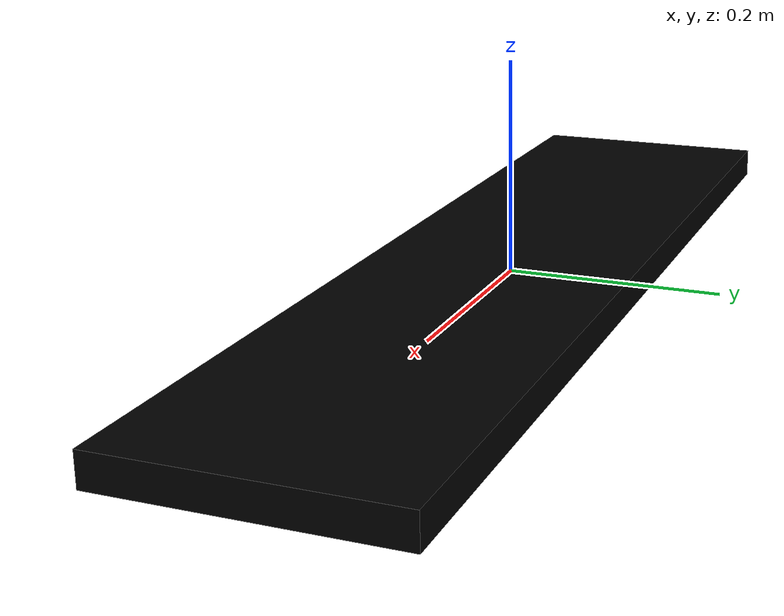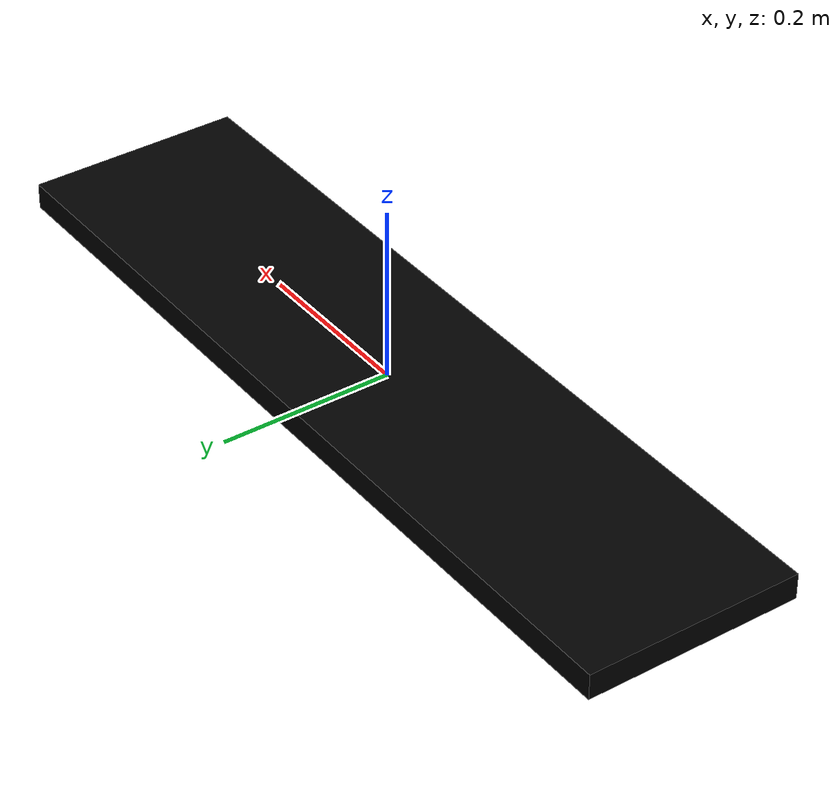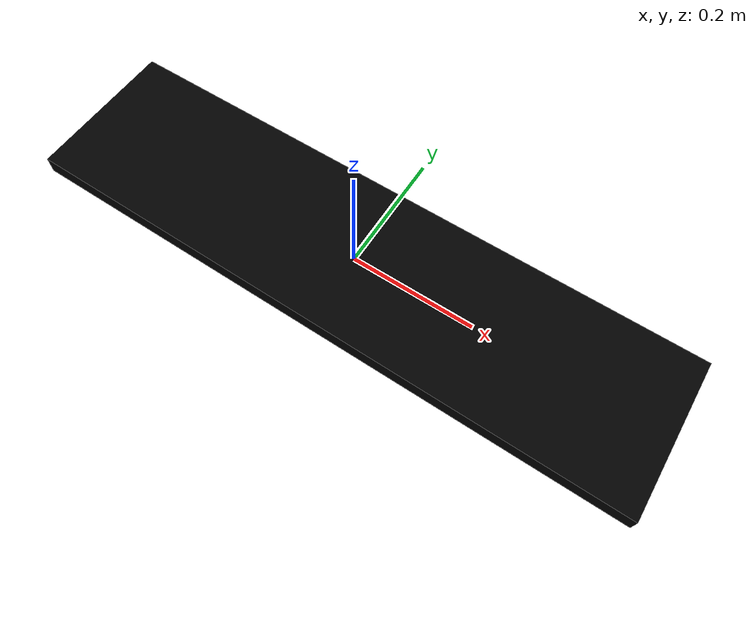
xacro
<?xml version="1.0"?>

<robot xmlns:xacro="http://ros.org/wiki/xacro">
    <material name="Body_Gray">
        <color rgba="0.0 0.0 0.0 1.0" />
    </material>
    <xacro:macro name="make_body">
        <xacro:property name="w" value="0.25" />
        <xacro:property name="h" value="0.03" />
        <xacro:property name="l" value="1" />
        <xacro:property name="m" value="0.5" />
        <xacro:include filename="lib.xacro" />

        <link name="body_link">
            <visual>
                <geometry>
                    <box size="${l} ${w} ${h}" />
                </geometry>
                <material name="Body_Gray" />
            </visual>
            <collision>
                <geometry>
                    <box size=" ${l} ${w} ${h}" />
                </geometry>
            </collision>
            <xacro:box_inertia m="${m}" x="${l}" y="${w}" z="${h}" />
        </link>
        <gazebo reference="body_link">
            <material value="Gazebo/Wood" />
            <sensor name="imu_sensor" type="imu">
                <always_on>1</always_on>
                <gravity>true</gravity>
                <update_rate>1000.0</update_rate>
            </sensor>
        </gazebo>

    </xacro:macro>
    <xacro:make_body />

</robot>

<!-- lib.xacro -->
<robot xmlns:xacro="http://ros.org/wiki/xacro">

  <xacro:property name="M_PI" value="3.14159" />

  <xacro:macro name="cylinder_inertia" params="m r h">
    <inertial>
      <mass value="${m}" />
      <inertia ixx="${m*(3*r*r+h*h)/12}" ixy="0" ixz="0" iyy="${m*(3*r*r+h*h)/12}" iyz="0" izz="${m*r*r/2}" />
    </inertial>
  </xacro:macro>

  <xacro:macro name="box_inertia" params="m x y z">
    <inertial>
      <mass value="${m}" />
      <inertia ixx="${m*(y*y+z*z)/12}" ixy="0" ixz="0" iyy="${m*(x*x+z*z)/12}" iyz="0" izz="${m*(x*x+z*z)/12}" />
    </inertial>
  </xacro:macro>

  <xacro:macro name="sphere_inertia" params="m r">
    <inertial>
      <mass value="${m}" />
      <mass value="${m}" />
      <inertial ixx="${2*m*r*r/5}" ixy="0" ixz="0" iyy="${2*m*r*r/5}" iyz="0" izz="${2*m*r*r/5}" />
    </inertial>
  </xacro:macro>
  <xacro:macro name="zero_inertia">
    <xacro:sphere_inertia m="0.01" r="0.01" />
  </xacro:macro>

  <xacro:macro name="transmission" params="joint">
    <ros2_control name="GazeboSystem" type="system">
      <hardware>
        <plugin>gazebo_ros2_control/GazeboSystem</plugin>
      </hardware>
      <joint name="${joint}">
        <command_interface name="effort">
          <param name="min">-1000</param>
          <param name="max">1000</param>
        </command_interface>
        <state_interface name="position">
          <param name="initial_value">0.0</param>
        </state_interface>
        <state_interface name="velocity"/>
        <state_interface name="effort"/>
      </joint>
    </ros2_control>
  </xacro:macro>

  <xacro:macro name="cam" params="suffix xyz rpy pod_link_name">
    <link name="camera_${suffix}">
      <visual>
        <origin xyz="0 0 0.0" rpy="0 0 0" />
        <geometry>
          <box size="0.01 0.04 0.04" />
        </geometry>
        <material name="red" />
      </visual>
      <collision>
        <geometry>
          <box size="0.01 0.04 0.04" />
        </geometry>
      </collision>

      <inertial>
        <mass value="0.01" />
        <origin xyz="0 0 0" />
        <inertia ixx="0.0001" ixy="0.0" ixz="0.0" iyy="0.0001" iyz="0.0" izz="0.0001" />
      </inertial>
    </link>

    <gazebo reference="camera_${suffix}">
      <material>Gazebo/Red</material>
      <sensor name="camera_${suffix}_sensor" type="camera">
        <camera>
          <horizontal_fov>1.5</horizontal_fov>
          <image>
            <width>640</width>
            <height>480</height>
          </image>
          <clip>
            <near>0.1</near>
            <far>1000</far>
          </clip>
        </camera>
        <always_on>1</always_on>
        <update_rate>10</update_rate>
        <visualize>false</visualize>
        <camera name="camera_${suffix}">
          <distortion>
            <k1>0.0</k1>
            <k2>0.0</k2>
            <k3>0.0</k3>
            <p1>0.0</p1>
            <p2>0.0</p2>
            <center> 0.5 0.5 </center>
          </distortion>
        </camera>

        <plugin name="camera_controller" filename="libgazebo_ros_camera.so">

          <ros>
            <namespace></namespace>
          </ros>
          <hack_baseline>0.07</hack_baseline>
          <frame_name>camera_${suffix}</frame_name>
        </plugin>
      </sensor>
    </gazebo>

    <joint name="cam_joint_${suffix}" type="fixed">
      <parent link="${pod_link_name}" />
      <child link="camera_${suffix}" />
      <origin xyz="${xyz}" rpy="${rpy}" />
    </joint>

    <gazebo reference="cam_joint_${suffix}">
        <preserveFixedJoint>true</preserveFixedJoint>
    </gazebo>
  </xacro:macro>

</robot>
